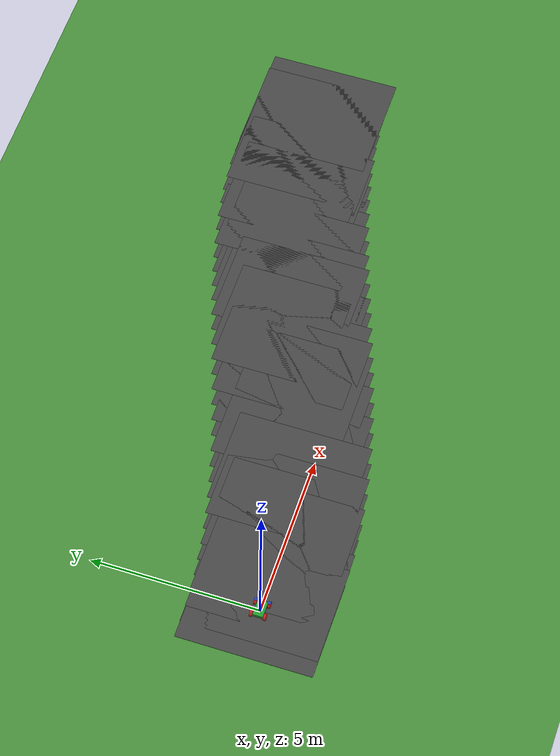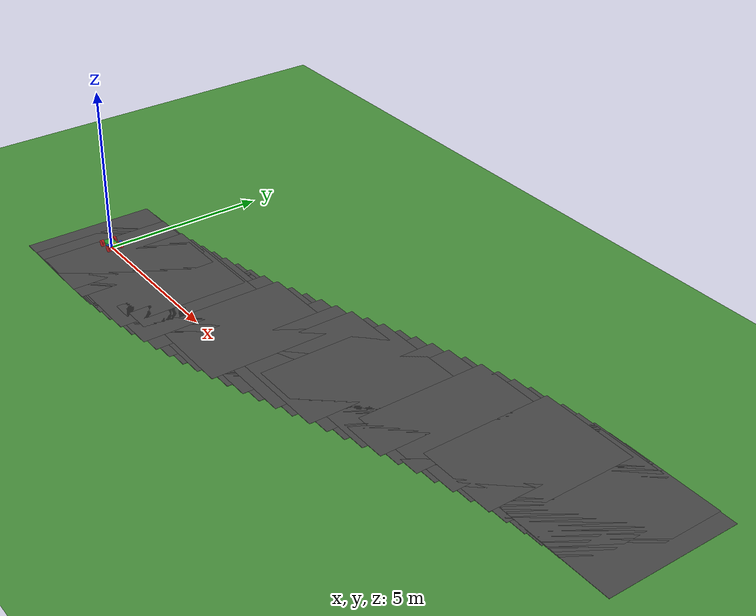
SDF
<sdf version="1.7">
 <world name="default">
  <model name="grass_plane">
   <static>1</static>
   <link name="link">
    <collision name="collision">
     <geometry><plane><normal>0 0 1</normal><size>150 150</size></plane></geometry>
    </collision>
    <visual name="visual">
     <cast_shadows>0</cast_shadows>
     <geometry><plane><normal>0 0 1</normal><size>150 150</size></plane></geometry>
     <material>
      <script><uri>file://media/materials/scripts/gazebo.material</uri><name>Gazebo/Grass</name></script>
     </material>
    </visual>
   </link>
  </model>
  <model name="steer_bot">
   <link name="base_link">
    <inertial>
     <pose>0.00098 0.00098 0.001961 0 -0 0</pose>
     <mass>5.1</mass>
     <inertia>
      <ixx>0.042913</ixx>
      <ixy>-0.000245098</ixy>
      <ixz>-0.000490196</ixz>
      <iyy>0.10958</iyy>
      <iyz>-0.000490196</iyz>
      <izz>0.142157</izz>
     </inertia>
    </inertial>
    <collision name="base_link_collision"><geometry><box><size>0.5 0.3 0.1</size></box></geometry></collision>
    <collision name="base_link_fixed_joint_lump__imu_box_collision_1">
     <pose>0 0 0.05 0 -0 0</pose>
     <geometry><box><size>0.05 0.05 0.05</size></box></geometry>
    </collision>
    <visual name="base_link_visual">
     <geometry><box><size>0.5 0.3 0.1</size></box></geometry>
     <material>
      <script><name>Gazebo/Green</name><uri>file://media/materials/scripts/gazebo.material</uri></script>
     </material>
    </visual>
    <visual name="base_link_fixed_joint_lump__imu_box_visual_1">
     <pose>0 0 0.05 0 -0 0</pose>
     <geometry><box><size>0.05 0.05 0.05</size></box></geometry>
     <material>
      <script><name>Gazebo/White</name><uri>file://media/materials/scripts/gazebo.material</uri></script>
     </material>
    </visual>
    <sensor name="imu_sensor" type="imu">
     <always_on>1</always_on>
     <update_rate>100</update_rate>
     <visualize>1</visualize>
     <topic>__default_topic__</topic>
     <plugin name="imu_plugin" filename="libgazebo_ros_imu_sensor.so">
      <topicName>imu</topicName>
      <bodyName>imu_link</bodyName>
      <updateRateHZ>10.0</updateRateHZ>
      <gaussianNoise>2.89e-08</gaussianNoise>
      <xyzOffset>0 0 0</xyzOffset>
      <rpyOffset>0 0 0</rpyOffset>
      <frameName>imu_link</frameName>
      <inertialOrientationAsReference>0</inertialOrientationAsReference>
      <robotNamespace>/steer_bot/</robotNamespace>
     </plugin>
     <pose>0 0 0.05 0 -0 0</pose>
    </sensor>
   </link>
   <joint name="front_left_steer_joint" type="revolute">
    <pose relative_to="base_link">0.2 0.2 0.12 0 -0 0</pose>
    <parent>base_link</parent>
    <child>front_left_steer_link</child>
    <axis>
     <xyz>0 0 1</xyz>
     <limit><lower>-0.785398</lower><upper>0.785398</upper><effort>10</effort><velocity>5</velocity></limit>
     <dynamics><spring_reference>0</spring_reference><spring_stiffness>0</spring_stiffness></dynamics>
    </axis>
   </joint>
   <link name="front_left_steer_link">
    <pose relative_to="front_left_steer_joint">0 0 0 0 -0 0</pose>
    <inertial>
     <mass>1</mass>
     <inertia>
      <ixx>0.000658333</ixx>
      <ixy>0</ixy>
      <ixz>0</ixz>
      <iyy>0.000658333</iyy>
      <iyz>0</iyz>
      <izz>0.00125</izz>
     </inertia>
    </inertial>
    <collision name="front_left_steer_link_collision">
     <geometry><cylinder><length>0.02</length><radius>0.05</radius></cylinder></geometry>
    </collision>
    <visual name="front_left_steer_link_visual">
     <geometry><cylinder><length>0.02</length><radius>0.05</radius></cylinder></geometry>
     <material>
      <script><name>Gazebo/Blue</name><uri>file://media/materials/scripts/gazebo.material</uri></script>
     </material>
    </visual>
   </link>
   <joint name="front_left_wheel_joint" type="revolute">
    <pose relative_to="front_left_steer_link">0 0 -0.12 -1.5708 0 0</pose>
    <parent>front_left_steer_link</parent>
    <child>front_left_wheel_link</child>
    <axis>
     <xyz>0 0 1</xyz>
     <limit><lower>-1e+16</lower><upper>1e+16</upper></limit>
     <dynamics><spring_reference>0</spring_reference><spring_stiffness>0</spring_stiffness></dynamics>
    </axis>
   </joint>
   <link name="front_left_wheel_link">
    <pose relative_to="front_left_wheel_joint">0 0 0 0 -0 0</pose>
    <inertial>
     <mass>1</mass>
     <inertia>
      <ixx>0.00303333</ixx>
      <ixy>0</ixy>
      <ixz>0</ixz>
      <iyy>0.00303333</iyy>
      <iyz>0</iyz>
      <izz>0.005</izz>
     </inertia>
    </inertial>
    <collision name="front_left_wheel_link_collision">
     <geometry><cylinder><length>0.08</length><radius>0.1</radius></cylinder></geometry>
    </collision>
    <visual name="front_left_wheel_link_visual">
     <geometry><cylinder><length>0.08</length><radius>0.1</radius></cylinder></geometry>
     <material>
      <script><name>Gazebo/Red</name><uri>file://media/materials/scripts/gazebo.material</uri></script>
     </material>
    </visual>
   </link>
   <joint name="front_right_steer_joint" type="revolute">
    <pose relative_to="base_link">0.2 -0.2 0.12 0 -0 0</pose>
    <parent>base_link</parent>
    <child>front_right_steer_link</child>
    <axis>
     <xyz>0 0 1</xyz>
     <limit><lower>-0.785398</lower><upper>0.785398</upper><effort>10</effort><velocity>5</velocity></limit>
     <dynamics><spring_reference>0</spring_reference><spring_stiffness>0</spring_stiffness></dynamics>
    </axis>
   </joint>
   <link name="front_right_steer_link">
    <pose relative_to="front_right_steer_joint">0 0 0 0 -0 0</pose>
    <inertial>
     <mass>1</mass>
     <inertia>
      <ixx>0.000658333</ixx>
      <ixy>0</ixy>
      <ixz>0</ixz>
      <iyy>0.000658333</iyy>
      <iyz>0</iyz>
      <izz>0.00125</izz>
     </inertia>
    </inertial>
    <collision name="front_right_steer_link_collision">
     <geometry><cylinder><length>0.02</length><radius>0.05</radius></cylinder></geometry>
    </collision>
    <visual name="front_right_steer_link_visual">
     <geometry><cylinder><length>0.02</length><radius>0.05</radius></cylinder></geometry>
     <material>
      <script><name>Gazebo/Blue</name><uri>file://media/materials/scripts/gazebo.material</uri></script>
     </material>
    </visual>
   </link>
   <joint name="front_right_wheel_joint" type="revolute">
    <pose relative_to="front_right_steer_link">0 0 -0.12 -1.5708 0 0</pose>
    <parent>front_right_steer_link</parent>
    <child>front_right_wheel_link</child>
    <axis>
     <xyz>0 0 1</xyz>
     <limit><lower>-1e+16</lower><upper>1e+16</upper></limit>
     <dynamics><spring_reference>0</spring_reference><spring_stiffness>0</spring_stiffness></dynamics>
    </axis>
   </joint>
   <link name="front_right_wheel_link">
    <pose relative_to="front_right_wheel_joint">0 0 0 0 -0 0</pose>
    <inertial>
     <mass>1</mass>
     <inertia>
      <ixx>0.00303333</ixx>
      <ixy>0</ixy>
      <ixz>0</ixz>
      <iyy>0.00303333</iyy>
      <iyz>0</iyz>
      <izz>0.005</izz>
     </inertia>
    </inertial>
    <collision name="front_right_wheel_link_collision">
     <geometry><cylinder><length>0.08</length><radius>0.1</radius></cylinder></geometry>
    </collision>
    <visual name="front_right_wheel_link_visual">
     <geometry><cylinder><length>0.08</length><radius>0.1</radius></cylinder></geometry>
     <material>
      <script><name>Gazebo/Red</name><uri>file://media/materials/scripts/gazebo.material</uri></script>
     </material>
    </visual>
   </link>
   <joint name="front_steer_joint" type="revolute">
    <pose relative_to="base_link">0.2 0 0.12 0 -0 0</pose>
    <parent>base_link</parent>
    <child>front_steer_link</child>
    <axis>
     <xyz>0 0 1</xyz>
     <limit><lower>-3.14159</lower><upper>3.14159</upper><effort>10</effort><velocity>5</velocity></limit>
     <dynamics><spring_reference>0</spring_reference><spring_stiffness>0</spring_stiffness></dynamics>
    </axis>
   </joint>
   <link name="front_steer_link">
    <pose relative_to="front_steer_joint">0 0 0 0 -0 0</pose>
    <inertial>
     <mass>1</mass>
     <inertia>
      <ixx>0.000658333</ixx>
      <ixy>0</ixy>
      <ixz>0</ixz>
      <iyy>0.000658333</iyy>
      <iyz>0</iyz>
      <izz>0.00125</izz>
     </inertia>
    </inertial>
    <collision name="front_steer_link_collision">
     <geometry><cylinder><length>0.02</length><radius>0.05</radius></cylinder></geometry>
    </collision>
    <visual name="front_steer_link_visual">
     <geometry><cylinder><length>0.02</length><radius>0.05</radius></cylinder></geometry>
     <material>
      <script><name>Gazebo/Yellow</name><uri>file://media/materials/scripts/gazebo.material</uri></script>
     </material>
    </visual>
   </link>
   <joint name="rear_left_wheel_joint" type="revolute">
    <pose relative_to="base_link">-0.2 0.2 0 -1.5708 0 0</pose>
    <parent>base_link</parent>
    <child>rear_left_wheel_link</child>
    <axis>
     <xyz>0 0 1</xyz>
     <limit><lower>-1e+16</lower><upper>1e+16</upper></limit>
     <dynamics><spring_reference>0</spring_reference><spring_stiffness>0</spring_stiffness></dynamics>
    </axis>
   </joint>
   <link name="rear_left_wheel_link">
    <pose relative_to="rear_left_wheel_joint">0 0 0 0 -0 0</pose>
    <inertial>
     <mass>1</mass>
     <inertia>
      <ixx>0.00303333</ixx>
      <ixy>0</ixy>
      <ixz>0</ixz>
      <iyy>0.00303333</iyy>
      <iyz>0</iyz>
      <izz>0.005</izz>
     </inertia>
    </inertial>
    <collision name="rear_left_wheel_link_collision">
     <geometry><cylinder><length>0.08</length><radius>0.1</radius></cylinder></geometry>
    </collision>
    <visual name="rear_left_wheel_link_visual">
     <geometry><cylinder><length>0.08</length><radius>0.1</radius></cylinder></geometry>
     <material>
      <script><name>Gazebo/Red</name><uri>file://media/materials/scripts/gazebo.material</uri></script>
     </material>
    </visual>
   </link>
   <joint name="rear_right_wheel_joint" type="revolute">
    <pose relative_to="base_link">-0.2 -0.2 0 -1.5708 0 0</pose>
    <parent>base_link</parent>
    <child>rear_right_wheel_link</child>
    <axis>
     <xyz>0 0 1</xyz>
     <limit><lower>-1e+16</lower><upper>1e+16</upper></limit>
     <dynamics><spring_reference>0</spring_reference><spring_stiffness>0</spring_stiffness></dynamics>
    </axis>
   </joint>
   <link name="rear_right_wheel_link">
    <pose relative_to="rear_right_wheel_joint">0 0 0 0 -0 0</pose>
    <inertial>
     <mass>1</mass>
     <inertia>
      <ixx>0.00303333</ixx>
      <ixy>0</ixy>
      <ixz>0</ixz>
      <iyy>0.00303333</iyy>
      <iyz>0</iyz>
      <izz>0.005</izz>
     </inertia>
    </inertial>
    <collision name="rear_right_wheel_link_collision">
     <geometry><cylinder><length>0.08</length><radius>0.1</radius></cylinder></geometry>
    </collision>
    <visual name="rear_right_wheel_link_visual">
     <geometry><cylinder><length>0.08</length><radius>0.1</radius></cylinder></geometry>
     <material>
      <script><name>Gazebo/Red</name><uri>file://media/materials/scripts/gazebo.material</uri></script>
     </material>
    </visual>
   </link>
   <joint name="rear_wheel_joint" type="revolute">
    <pose relative_to="base_link">-0.2 0 0 -1.5708 0 0</pose>
    <parent>base_link</parent>
    <child>rear_wheel_link</child>
    <axis>
     <xyz>0 0 1</xyz>
     <limit><lower>-1e+16</lower><upper>1e+16</upper></limit>
     <dynamics><spring_reference>0</spring_reference><spring_stiffness>0</spring_stiffness></dynamics>
    </axis>
   </joint>
   <link name="rear_wheel_link">
    <pose relative_to="rear_wheel_joint">0 0 0 0 -0 0</pose>
    <inertial>
     <mass>0.03125</mass>
     <inertia>
      <ixx>9.04948e-06</ixx>
      <ixy>0</ixy>
      <ixz>0</ixz>
      <iyy>9.04948e-06</iyy>
      <iyz>0</iyz>
      <izz>9.76563e-06</izz>
     </inertia>
    </inertial>
    <collision name="rear_wheel_link_collision">
     <geometry><cylinder><length>0.04</length><radius>0.025</radius></cylinder></geometry>
    </collision>
    <visual name="rear_wheel_link_visual">
     <geometry><cylinder><length>0.04</length><radius>0.025</radius></cylinder></geometry>
     <material>
      <script><name>Gazebo/Yellow</name><uri>file://media/materials/scripts/gazebo.material</uri></script>
     </material>
    </visual>
   </link>
   <static>0</static>
   <plugin name="gazebo_ros_control" filename="libgazebo_ros_control.so">
    <robotNamespace>/steer_bot</robotNamespace>
    <robotSimType>steer_bot_hardware_gazebo/SteerBotHardwareGazebo</robotSimType>
    <legacyModeNS>0</legacyModeNS>
   </plugin>
   <plugin name="p3d_base_controller" filename="libgazebo_ros_p3d.so">
    <alwaysOn>1</alwaysOn>
    <updateRate>50.0</updateRate>
    <bodyName>base_link</bodyName>
    <topicName>pose_ground_truth</topicName>
    <gaussianNoise>0.00</gaussianNoise>
    <frameName>world</frameName>
    <xyzOffsets>0 0 0</xyzOffsets>
    <rpyOffsets>0 0 0</rpyOffsets>
    <robotNamespace>/steer_bot/</robotNamespace>
   </plugin>
   <pose>-0.000916 0.000112 0.105 1e-06 -1e-06 -8.4e-05</pose>
  </model>
  <model name="roadSegment_0_0">
   <static>1</static>
   <link name="link">
    <collision name="collision"><geometry><box><size>3 4 0.01</size></box></geometry></collision>
    <visual name="visual">
     <cast_shadows>0</cast_shadows>
     <geometry><box><size>3 4 0.01</size></box></geometry>
     <material>
      <script>
       <uri>model://asphalt_plane/materials/scripts</uri>
       <uri>model://asphalt_plane/materials/textures</uri>
       <name>vrc/asphalt</name>
      </script>
     </material>
    </visual>
   </link>
  </model>
  <model name="roadSegment_0_1">
   <static>1</static>
   <link name="link">
    <collision name="collision"><geometry><box><size>3 4 0.01</size></box></geometry></collision>
    <visual name="visual">
     <cast_shadows>0</cast_shadows>
     <geometry><box><size>3 4 0.01</size></box></geometry>
     <material>
      <script>
       <uri>model://asphalt_plane/materials/scripts</uri>
       <uri>model://asphalt_plane/materials/textures</uri>
       <name>vrc/asphalt</name>
      </script>
     </material>
    </visual>
   </link>
   <pose>0.5 0.01497 0 0 -0 0</pose>
  </model>
  <model name="roadSegment_1_0">
   <static>1</static>
   <link name="link">
    <collision name="collision"><geometry><box><size>3 4 0.01</size></box></geometry></collision>
    <visual name="visual">
     <cast_shadows>0</cast_shadows>
     <geometry><box><size>3 4 0.01</size></box></geometry>
     <material>
      <script>
       <uri>model://asphalt_plane/materials/scripts</uri>
       <uri>model://asphalt_plane/materials/textures</uri>
       <name>vrc/asphalt</name>
      </script>
     </material>
    </visual>
   </link>
   <pose>1 0.02994 0 0 -0 0</pose>
  </model>
  <model name="roadSegment_1_1">
   <static>1</static>
   <link name="link">
    <collision name="collision"><geometry><box><size>3 4 0.01</size></box></geometry></collision>
    <visual name="visual">
     <cast_shadows>0</cast_shadows>
     <geometry><box><size>3 4 0.01</size></box></geometry>
     <material>
      <script>
       <uri>model://asphalt_plane/materials/scripts</uri>
       <uri>model://asphalt_plane/materials/textures</uri>
       <name>vrc/asphalt</name>
      </script>
     </material>
    </visual>
   </link>
   <pose>1.5 0.074419 0 0 -0 0</pose>
  </model>
  <model name="roadSegment_2_0">
   <static>1</static>
   <link name="link">
    <collision name="collision"><geometry><box><size>3 4 0.01</size></box></geometry></collision>
    <visual name="visual">
     <cast_shadows>0</cast_shadows>
     <geometry><box><size>3 4 0.01</size></box></geometry>
     <material>
      <script>
       <uri>model://asphalt_plane/materials/scripts</uri>
       <uri>model://asphalt_plane/materials/textures</uri>
       <name>vrc/asphalt</name>
      </script>
     </material>
    </visual>
   </link>
   <pose>2 0.118898 0 0 -0 0</pose>
  </model>
  <model name="roadSegment_2_1">
   <static>1</static>
   <link name="link">
    <collision name="collision"><geometry><box><size>3 4 0.01</size></box></geometry></collision>
    <visual name="visual">
     <cast_shadows>0</cast_shadows>
     <geometry><box><size>3 4 0.01</size></box></geometry>
     <material>
      <script>
       <uri>model://asphalt_plane/materials/scripts</uri>
       <uri>model://asphalt_plane/materials/textures</uri>
       <name>vrc/asphalt</name>
      </script>
     </material>
    </visual>
   </link>
   <pose>2.5 0.191602 0 0 -0 0</pose>
  </model>
  <model name="roadSegment_3_0">
   <static>1</static>
   <link name="link">
    <collision name="collision"><geometry><box><size>3 4 0.01</size></box></geometry></collision>
    <visual name="visual">
     <cast_shadows>0</cast_shadows>
     <geometry><box><size>3 4 0.01</size></box></geometry>
     <material>
      <script>
       <uri>model://asphalt_plane/materials/scripts</uri>
       <uri>model://asphalt_plane/materials/textures</uri>
       <name>vrc/asphalt</name>
      </script>
     </material>
    </visual>
   </link>
   <pose>3 0.264307 0 0 -0 0</pose>
  </model>
  <model name="roadSegment_3_1">
   <static>1</static>
   <link name="link">
    <collision name="collision"><geometry><box><size>3 4 0.01</size></box></geometry></collision>
    <visual name="visual">
     <cast_shadows>0</cast_shadows>
     <geometry><box><size>3 4 0.01</size></box></geometry>
     <material>
      <script>
       <uri>model://asphalt_plane/materials/scripts</uri>
       <uri>model://asphalt_plane/materials/textures</uri>
       <name>vrc/asphalt</name>
      </script>
     </material>
    </visual>
   </link>
   <pose>3.5 0.363128 0 0 -0 0</pose>
  </model>
  <model name="roadSegment_4_0">
   <static>1</static>
   <link name="link">
    <collision name="collision"><geometry><box><size>3 4 0.01</size></box></geometry></collision>
    <visual name="visual">
     <cast_shadows>0</cast_shadows>
     <geometry><box><size>3 4 0.01</size></box></geometry>
     <material>
      <script>
       <uri>model://asphalt_plane/materials/scripts</uri>
       <uri>model://asphalt_plane/materials/textures</uri>
       <name>vrc/asphalt</name>
      </script>
     </material>
    </visual>
   </link>
   <pose>4 0.46195 0 0 -0 0</pose>
  </model>
  <model name="roadSegment_4_1">
   <static>1</static>
   <link name="link">
    <collision name="collision"><geometry><box><size>3 4 0.01</size></box></geometry></collision>
    <visual name="visual">
     <cast_shadows>0</cast_shadows>
     <geometry><box><size>3 4 0.01</size></box></geometry>
     <material>
      <script>
       <uri>model://asphalt_plane/materials/scripts</uri>
       <uri>model://asphalt_plane/materials/textures</uri>
       <name>vrc/asphalt</name>
      </script>
     </material>
    </visual>
   </link>
   <pose>4.5 0.584 0 0 -0 0</pose>
  </model>
  <model name="roadSegment_5_0">
   <static>1</static>
   <link name="link">
    <collision name="collision"><geometry><box><size>3 4 0.01</size></box></geometry></collision>
    <visual name="visual">
     <cast_shadows>0</cast_shadows>
     <geometry><box><size>3 4 0.01</size></box></geometry>
     <material>
      <script>
       <uri>model://asphalt_plane/materials/scripts</uri>
       <uri>model://asphalt_plane/materials/textures</uri>
       <name>vrc/asphalt</name>
      </script>
     </material>
    </visual>
   </link>
   <pose>5 0.706051 0 0 -0 0</pose>
  </model>
  <model name="roadSegment_5_1">
   <static>1</static>
   <link name="link">
    <collision name="collision"><geometry><box><size>3 4 0.01</size></box></geometry></collision>
    <visual name="visual">
     <cast_shadows>0</cast_shadows>
     <geometry><box><size>3 4 0.01</size></box></geometry>
     <material>
      <script>
       <uri>model://asphalt_plane/materials/scripts</uri>
       <uri>model://asphalt_plane/materials/textures</uri>
       <name>vrc/asphalt</name>
      </script>
     </material>
    </visual>
   </link>
   <pose>5.5 0.847726 0 0 -0 0</pose>
  </model>
  <model name="roadSegment_6_0">
   <static>1</static>
   <link name="link">
    <collision name="collision"><geometry><box><size>3 4 0.01</size></box></geometry></collision>
    <visual name="visual">
     <cast_shadows>0</cast_shadows>
     <geometry><box><size>3 4 0.01</size></box></geometry>
     <material>
      <script>
       <uri>model://asphalt_plane/materials/scripts</uri>
       <uri>model://asphalt_plane/materials/textures</uri>
       <name>vrc/asphalt</name>
      </script>
     </material>
    </visual>
   </link>
   <pose>6 0.989402 0 0 -0 0</pose>
  </model>
  <model name="roadSegment_6_1">
   <static>1</static>
   <link name="link">
    <collision name="collision"><geometry><box><size>3 4 0.01</size></box></geometry></collision>
    <visual name="visual">
     <cast_shadows>0</cast_shadows>
     <geometry><box><size>3 4 0.01</size></box></geometry>
     <material>
      <script>
       <uri>model://asphalt_plane/materials/scripts</uri>
       <uri>model://asphalt_plane/materials/textures</uri>
       <name>vrc/asphalt</name>
      </script>
     </material>
    </visual>
   </link>
   <pose>6.5 1.14646 0 0 -0 0</pose>
  </model>
  <model name="roadSegment_7_0">
   <static>1</static>
   <link name="link">
    <collision name="collision"><geometry><box><size>3 4 0.01</size></box></geometry></collision>
    <visual name="visual">
     <cast_shadows>0</cast_shadows>
     <geometry><box><size>3 4 0.01</size></box></geometry>
     <material>
      <script>
       <uri>model://asphalt_plane/materials/scripts</uri>
       <uri>model://asphalt_plane/materials/textures</uri>
       <name>vrc/asphalt</name>
      </script>
     </material>
    </visual>
   </link>
   <pose>7 1.30352 0 0 -0 0</pose>
  </model>
  <model name="roadSegment_7_1">
   <static>1</static>
   <link name="link">
    <collision name="collision"><geometry><box><size>3 4 0.01</size></box></geometry></collision>
    <visual name="visual">
     <cast_shadows>0</cast_shadows>
     <geometry><box><size>3 4 0.01</size></box></geometry>
     <material>
      <script>
       <uri>model://asphalt_plane/materials/scripts</uri>
       <uri>model://asphalt_plane/materials/textures</uri>
       <name>vrc/asphalt</name>
      </script>
     </material>
    </visual>
   </link>
   <pose>7.5 1.47117 0 0 -0 0</pose>
  </model>
  <model name="roadSegment_8_0">
   <static>1</static>
   <link name="link">
    <collision name="collision"><geometry><box><size>3 4 0.01</size></box></geometry></collision>
    <visual name="visual">
     <cast_shadows>0</cast_shadows>
     <geometry><box><size>3 4 0.01</size></box></geometry>
     <material>
      <script>
       <uri>model://asphalt_plane/materials/scripts</uri>
       <uri>model://asphalt_plane/materials/textures</uri>
       <name>vrc/asphalt</name>
      </script>
     </material>
    </visual>
   </link>
   <pose>8 1.63882 0 0 -0 0</pose>
  </model>
  <model name="roadSegment_8_1">
   <static>1</static>
   <link name="link">
    <collision name="collision"><geometry><box><size>3 4 0.01</size></box></geometry></collision>
    <visual name="visual">
     <cast_shadows>0</cast_shadows>
     <geometry><box><size>3 4 0.01</size></box></geometry>
     <material>
      <script>
       <uri>model://asphalt_plane/materials/scripts</uri>
       <uri>model://asphalt_plane/materials/textures</uri>
       <name>vrc/asphalt</name>
      </script>
     </material>
    </visual>
   </link>
   <pose>8.5 1.81184 0 0 -0 0</pose>
  </model>
  <model name="roadSegment_9_0">
   <static>1</static>
   <link name="link">
    <collision name="collision"><geometry><box><size>3 4 0.01</size></box></geometry></collision>
    <visual name="visual">
     <cast_shadows>0</cast_shadows>
     <geometry><box><size>3 4 0.01</size></box></geometry>
     <material>
      <script>
       <uri>model://asphalt_plane/materials/scripts</uri>
       <uri>model://asphalt_plane/materials/textures</uri>
       <name>vrc/asphalt</name>
      </script>
     </material>
    </visual>
   </link>
   <pose>9 1.98486 0 0 -0 0</pose>
  </model>
  <model name="roadSegment_9_1">
   <static>1</static>
   <link name="link">
    <collision name="collision"><geometry><box><size>3 4 0.01</size></box></geometry></collision>
    <visual name="visual">
     <cast_shadows>0</cast_shadows>
     <geometry><box><size>3 4 0.01</size></box></geometry>
     <material>
      <script>
       <uri>model://asphalt_plane/materials/scripts</uri>
       <uri>model://asphalt_plane/materials/textures</uri>
       <name>vrc/asphalt</name>
      </script>
     </material>
    </visual>
   </link>
   <pose>9.5 2.1577 0 0 -0 0</pose>
  </model>
  <model name="roadSegment_10_0">
   <static>1</static>
   <link name="link">
    <collision name="collision"><geometry><box><size>3 4 0.01</size></box></geometry></collision>
    <visual name="visual">
     <cast_shadows>0</cast_shadows>
     <geometry><box><size>3 4 0.01</size></box></geometry>
     <material>
      <script>
       <uri>model://asphalt_plane/materials/scripts</uri>
       <uri>model://asphalt_plane/materials/textures</uri>
       <name>vrc/asphalt</name>
      </script>
     </material>
    </visual>
   </link>
   <pose>10 2.33053 0 0 -0 0</pose>
  </model>
  <model name="roadSegment_10_1">
   <static>1</static>
   <link name="link">
    <collision name="collision"><geometry><box><size>3 4 0.01</size></box></geometry></collision>
    <visual name="visual">
     <cast_shadows>0</cast_shadows>
     <geometry><box><size>3 4 0.01</size></box></geometry>
     <material>
      <script>
       <uri>model://asphalt_plane/materials/scripts</uri>
       <uri>model://asphalt_plane/materials/textures</uri>
       <name>vrc/asphalt</name>
      </script>
     </material>
    </visual>
   </link>
   <pose>10.5 2.49743 0 0 -0 0</pose>
  </model>
  <model name="roadSegment_11_0">
   <static>1</static>
   <link name="link">
    <collision name="collision"><geometry><box><size>3 4 0.01</size></box></geometry></collision>
    <visual name="visual">
     <cast_shadows>0</cast_shadows>
     <geometry><box><size>3 4 0.01</size></box></geometry>
     <material>
      <script>
       <uri>model://asphalt_plane/materials/scripts</uri>
       <uri>model://asphalt_plane/materials/textures</uri>
       <name>vrc/asphalt</name>
      </script>
     </material>
    </visual>
   </link>
   <pose>11 2.66433 0 0 -0 0</pose>
  </model>
  <model name="roadSegment_11_1">
   <static>1</static>
   <link name="link">
    <collision name="collision"><geometry><box><size>3 4 0.01</size></box></geometry></collision>
    <visual name="visual">
     <cast_shadows>0</cast_shadows>
     <geometry><box><size>3 4 0.01</size></box></geometry>
     <material>
      <script>
       <uri>model://asphalt_plane/materials/scripts</uri>
       <uri>model://asphalt_plane/materials/textures</uri>
       <name>vrc/asphalt</name>
      </script>
     </material>
    </visual>
   </link>
   <pose>11.5 2.81946 0 0 -0 0</pose>
  </model>
  <model name="roadSegment_12_0">
   <static>1</static>
   <link name="link">
    <collision name="collision"><geometry><box><size>3 4 0.01</size></box></geometry></collision>
    <visual name="visual">
     <cast_shadows>0</cast_shadows>
     <geometry><box><size>3 4 0.01</size></box></geometry>
     <material>
      <script>
       <uri>model://asphalt_plane/materials/scripts</uri>
       <uri>model://asphalt_plane/materials/textures</uri>
       <name>vrc/asphalt</name>
      </script>
     </material>
    </visual>
   </link>
   <pose>12 2.9746 0 0 -0 0</pose>
  </model>
  <model name="roadSegment_12_1">
   <static>1</static>
   <link name="link">
    <collision name="collision"><geometry><box><size>3 4 0.01</size></box></geometry></collision>
    <visual name="visual">
     <cast_shadows>0</cast_shadows>
     <geometry><box><size>3 4 0.01</size></box></geometry>
     <material>
      <script>
       <uri>model://asphalt_plane/materials/scripts</uri>
       <uri>model://asphalt_plane/materials/textures</uri>
       <name>vrc/asphalt</name>
      </script>
     </material>
    </visual>
   </link>
   <pose>12.5 3.11222 0 0 -0 0</pose>
  </model>
  <model name="roadSegment_13_0">
   <static>1</static>
   <link name="link">
    <collision name="collision"><geometry><box><size>3 4 0.01</size></box></geometry></collision>
    <visual name="visual">
     <cast_shadows>0</cast_shadows>
     <geometry><box><size>3 4 0.01</size></box></geometry>
     <material>
      <script>
       <uri>model://asphalt_plane/materials/scripts</uri>
       <uri>model://asphalt_plane/materials/textures</uri>
       <name>vrc/asphalt</name>
      </script>
     </material>
    </visual>
   </link>
   <pose>13 3.24983 0 0 -0 0</pose>
  </model>
  <model name="roadSegment_13_1">
   <static>1</static>
   <link name="link">
    <collision name="collision"><geometry><box><size>3 4 0.01</size></box></geometry></collision>
    <visual name="visual">
     <cast_shadows>0</cast_shadows>
     <geometry><box><size>3 4 0.01</size></box></geometry>
     <material>
      <script>
       <uri>model://asphalt_plane/materials/scripts</uri>
       <uri>model://asphalt_plane/materials/textures</uri>
       <name>vrc/asphalt</name>
      </script>
     </material>
    </visual>
   </link>
   <pose>13.5 3.36436 0 0 -0 0</pose>
  </model>
  <model name="roadSegment_14_0">
   <static>1</static>
   <link name="link">
    <collision name="collision"><geometry><box><size>3 4 0.01</size></box></geometry></collision>
    <visual name="visual">
     <cast_shadows>0</cast_shadows>
     <geometry><box><size>3 4 0.01</size></box></geometry>
     <material>
      <script>
       <uri>model://asphalt_plane/materials/scripts</uri>
       <uri>model://asphalt_plane/materials/textures</uri>
       <name>vrc/asphalt</name>
      </script>
     </material>
    </visual>
   </link>
   <pose>14 3.47889 0 0 -0 0</pose>
  </model>
  <model name="roadSegment_14_1">
   <static>1</static>
   <link name="link">
    <collision name="collision"><geometry><box><size>3 4 0.01</size></box></geometry></collision>
    <visual name="visual">
     <cast_shadows>0</cast_shadows>
     <geometry><box><size>3 4 0.01</size></box></geometry>
     <material>
      <script>
       <uri>model://asphalt_plane/materials/scripts</uri>
       <uri>model://asphalt_plane/materials/textures</uri>
       <name>vrc/asphalt</name>
      </script>
     </material>
    </visual>
   </link>
   <pose>14.5 3.5651 0 0 -0 0</pose>
  </model>
  <model name="roadSegment_15_0">
   <static>1</static>
   <link name="link">
    <collision name="collision"><geometry><box><size>3 4 0.01</size></box></geometry></collision>
    <visual name="visual">
     <cast_shadows>0</cast_shadows>
     <geometry><box><size>3 4 0.01</size></box></geometry>
     <material>
      <script>
       <uri>model://asphalt_plane/materials/scripts</uri>
       <uri>model://asphalt_plane/materials/textures</uri>
       <name>vrc/asphalt</name>
      </script>
     </material>
    </visual>
   </link>
   <pose>15 3.65131 0 0 -0 0</pose>
  </model>
  <model name="roadSegment_15_1">
   <static>1</static>
   <link name="link">
    <collision name="collision"><geometry><box><size>3 4 0.01</size></box></geometry></collision>
    <visual name="visual">
     <cast_shadows>0</cast_shadows>
     <geometry><box><size>3 4 0.01</size></box></geometry>
     <material>
      <script>
       <uri>model://asphalt_plane/materials/scripts</uri>
       <uri>model://asphalt_plane/materials/textures</uri>
       <name>vrc/asphalt</name>
      </script>
     </material>
    </visual>
   </link>
   <pose>15.5 3.70442 0 0 -0 0</pose>
  </model>
  <model name="roadSegment_16_0">
   <static>1</static>
   <link name="link">
    <collision name="collision"><geometry><box><size>3 4 0.01</size></box></geometry></collision>
    <visual name="visual">
     <cast_shadows>0</cast_shadows>
     <geometry><box><size>3 4 0.01</size></box></geometry>
     <material>
      <script>
       <uri>model://asphalt_plane/materials/scripts</uri>
       <uri>model://asphalt_plane/materials/textures</uri>
       <name>vrc/asphalt</name>
      </script>
     </material>
    </visual>
   </link>
   <pose>16 3.75753 0 0 -0 0</pose>
  </model>
  <model name="roadSegment_16_1">
   <static>1</static>
   <link name="link">
    <collision name="collision"><geometry><box><size>3 4 0.01</size></box></geometry></collision>
    <visual name="visual">
     <cast_shadows>0</cast_shadows>
     <geometry><box><size>3 4 0.01</size></box></geometry>
     <material>
      <script>
       <uri>model://asphalt_plane/materials/scripts</uri>
       <uri>model://asphalt_plane/materials/textures</uri>
       <name>vrc/asphalt</name>
      </script>
     </material>
    </visual>
   </link>
   <pose>16.5 3.77333 0 0 -0 0</pose>
  </model>
  <model name="roadSegment_17_0">
   <static>1</static>
   <link name="link">
    <collision name="collision"><geometry><box><size>3 4 0.01</size></box></geometry></collision>
    <visual name="visual">
     <cast_shadows>0</cast_shadows>
     <geometry><box><size>3 4 0.01</size></box></geometry>
     <material>
      <script>
       <uri>model://asphalt_plane/materials/scripts</uri>
       <uri>model://asphalt_plane/materials/textures</uri>
       <name>vrc/asphalt</name>
      </script>
     </material>
    </visual>
   </link>
   <pose>17 3.78913 0 0 -0 0</pose>
  </model>
  <model name="roadSegment_17_1">
   <static>1</static>
   <link name="link">
    <collision name="collision"><geometry><box><size>3 4 0.01</size></box></geometry></collision>
    <visual name="visual">
     <cast_shadows>0</cast_shadows>
     <geometry><box><size>3 4 0.01</size></box></geometry>
     <material>
      <script>
       <uri>model://asphalt_plane/materials/scripts</uri>
       <uri>model://asphalt_plane/materials/textures</uri>
       <name>vrc/asphalt</name>
      </script>
     </material>
    </visual>
   </link>
   <pose>17.5 3.76409 0 0 -0 0</pose>
  </model>
 </world>
</sdf>
